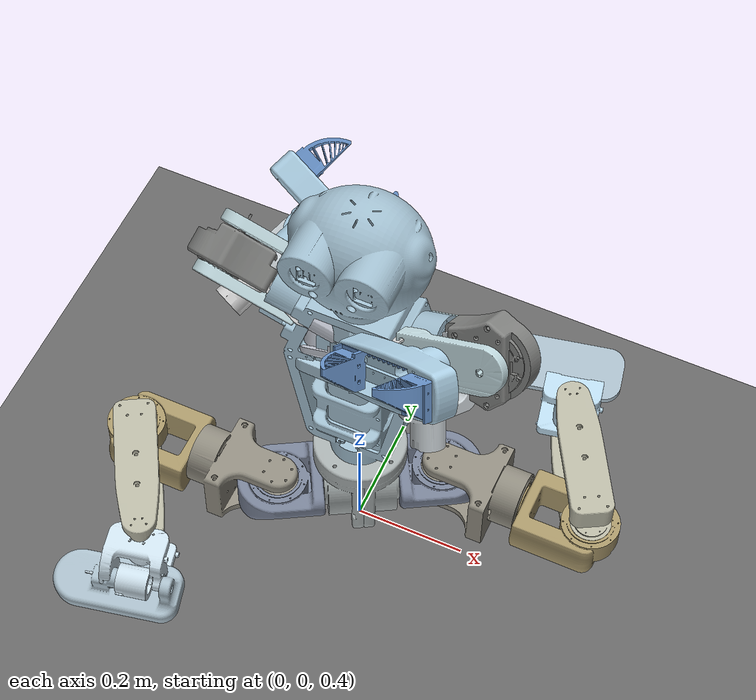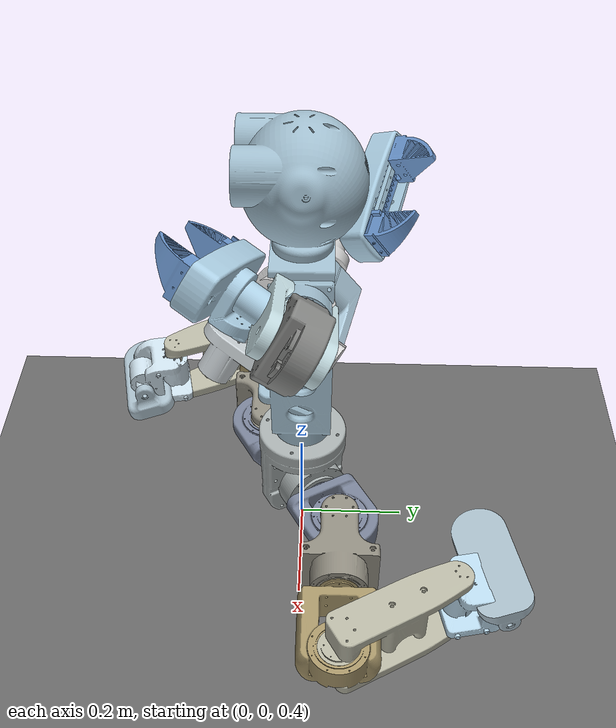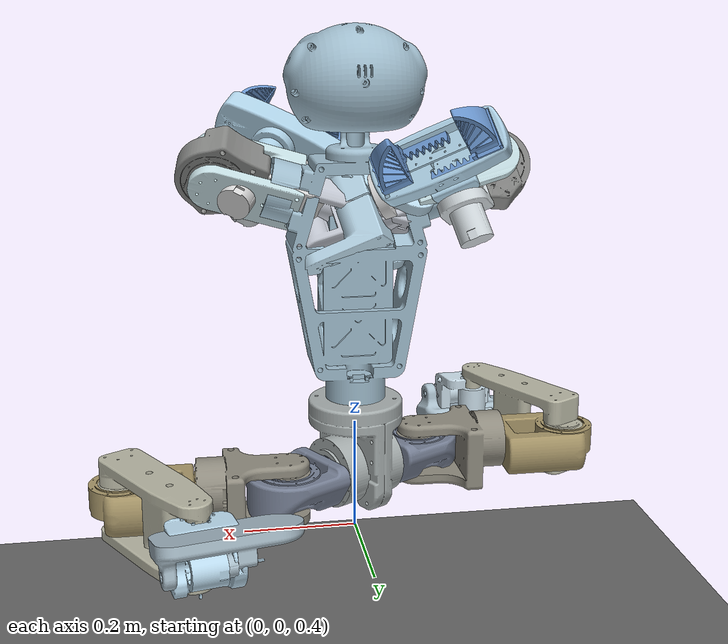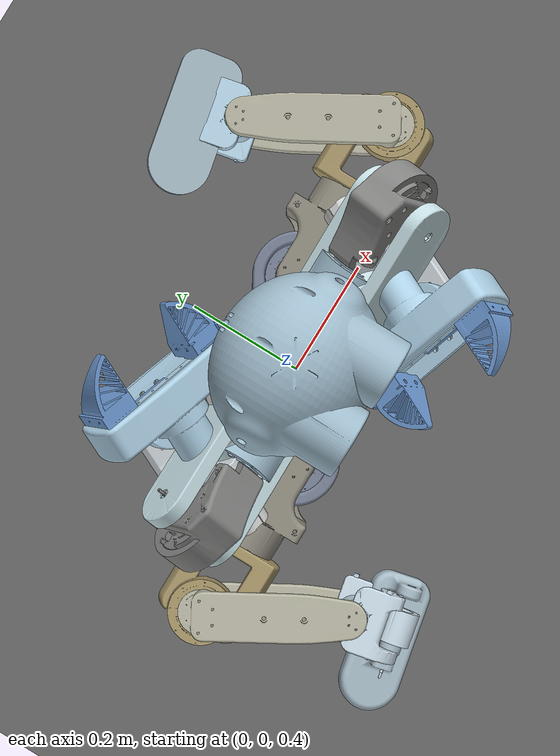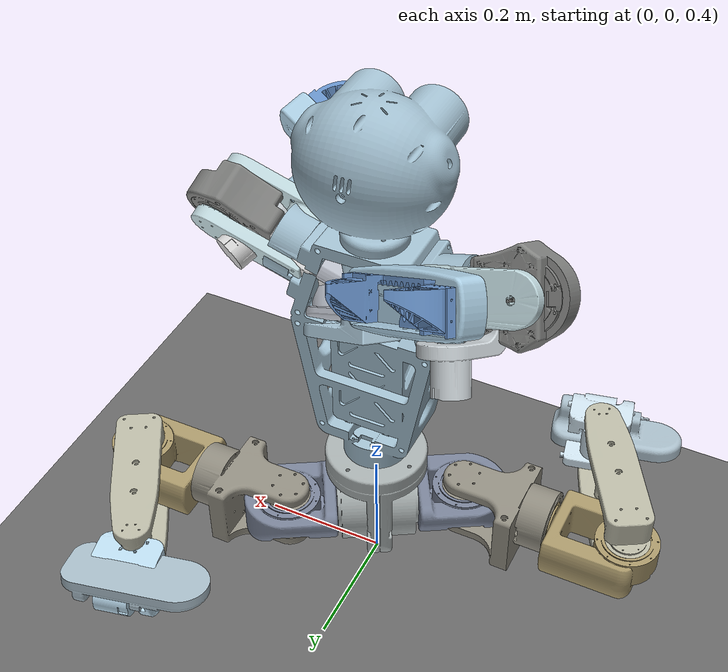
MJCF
<?xml version="1.0" ?>
<mujoco model="robot_7dof_arm">
  <compiler angle="radian" meshdir="meshes" autolimits="true"/>
  <default>
    <joint limited="true" damping="0.1" armature="0.01" frictionloss="0.0"/>
    <geom condim="3" contype="1" conaffinity="0" friction="0.9 0.2 0.2" solref="0.001 2"/>
    <motor ctrllimited="true"/>
    <equality solref="0.001 2"/>
    <default class="visualgeom">
      <geom type="mesh" condim="3" contype="0" conaffinity="0"/>
    </default>
    <default class="collision">
			<geom type="capsule" mass="0" density="0" condim="3" contype="1" conaffinity="1" group="3" />
		</default>
  </default>
  <option iterations="50" timestep="0.001" viscosity="1e-06" solver="PGS" gravity="0 0 -9.81">
    <flag frictionloss="enable"/>
  </option>
  <asset>
    <mesh name="fused_component_upper_limb_assembly_7_dof_1_torso_1_top_skeleton_2_simple" file="fused_component_upper_limb_assembly_7_dof_1_torso_1_top_skeleton_2_simple.stl"/>
    <mesh name="fused_component_upper_limb_assembly_7_dof_1_full_arm_7_dof_1_lower_arm_3_dof_1_hand_1_slide_2_simple" file="fused_component_upper_limb_assembly_7_dof_1_full_arm_7_dof_1_lower_arm_3_dof_1_hand_1_slide_2_simple.stl"/>
    <mesh name="fused_component_upper_limb_assembly_7_dof_1_full_arm_7_dof_1_lower_arm_3_dof_1_hand_1_slide_1_simple" file="fused_component_upper_limb_assembly_7_dof_1_full_arm_7_dof_1_lower_arm_3_dof_1_hand_1_slide_1_simple.stl"/>
    <mesh name="fused_component_upper_limb_assembly_7_dof_1_full_arm_7_dof_2_lower_arm_3_dof_1_hand_1_slide_2_simple" file="fused_component_upper_limb_assembly_7_dof_1_full_arm_7_dof_2_lower_arm_3_dof_1_hand_1_slide_2_simple.stl"/>
    <mesh name="fused_component_upper_limb_assembly_7_dof_1_full_arm_7_dof_2_lower_arm_3_dof_1_hand_1_slide_1_simple" file="fused_component_upper_limb_assembly_7_dof_1_full_arm_7_dof_2_lower_arm_3_dof_1_hand_1_slide_1_simple.stl"/>
    <mesh name="fused_component_upper_limb_assembly_7_dof_1_full_arm_7_dof_1_lower_arm_3_dof_1_rmd_x4_24_mock_3_inner_rmd_x4_24_1_simple" file="fused_component_upper_limb_assembly_7_dof_1_full_arm_7_dof_1_lower_arm_3_dof_1_rmd_x4_24_mock_3_inner_rmd_x4_24_1_simple.stl"/>
    <mesh name="fused_component_upper_limb_assembly_7_dof_1_full_arm_7_dof_2_lower_arm_3_dof_1_rmd_x4_24_mock_3_inner_rmd_x4_24_1_simple" file="fused_component_upper_limb_assembly_7_dof_1_full_arm_7_dof_2_lower_arm_3_dof_1_rmd_x4_24_mock_3_inner_rmd_x4_24_1_simple.stl"/>
    <mesh name="fused_component_lower_limbs_1_left_foot_1_rmd_x4_24_mock_1_inner_rmd_x4_24_1_simple" file="fused_component_lower_limbs_1_left_foot_1_rmd_x4_24_mock_1_inner_rmd_x4_24_1_simple.stl"/>
    <mesh name="fused_component_lower_limbs_1_right_foot_1_rmd_x4_24_mock_1_inner_rmd_x4_24_1_simple" file="fused_component_lower_limbs_1_right_foot_1_rmd_x4_24_mock_1_inner_rmd_x4_24_1_simple.stl"/>
    <mesh name="fused_component_upper_limb_assembly_7_dof_1_full_arm_7_dof_1_lower_arm_3_dof_1_rmd_x4_24_mock_2_inner_rmd_x4_24_1_simple" file="fused_component_upper_limb_assembly_7_dof_1_full_arm_7_dof_1_lower_arm_3_dof_1_rmd_x4_24_mock_2_inner_rmd_x4_24_1_simple.stl"/>
    <mesh name="fused_component_upper_limb_assembly_7_dof_1_full_arm_7_dof_2_lower_arm_3_dof_1_rmd_x4_24_mock_2_inner_rmd_x4_24_1_simple" file="fused_component_upper_limb_assembly_7_dof_1_full_arm_7_dof_2_lower_arm_3_dof_1_rmd_x4_24_mock_2_inner_rmd_x4_24_1_simple.stl"/>
    <mesh name="fused_component_lower_limbs_1_leg_assembly_1_rmd_x4_24_mock_1_outer_rmd_x4_24_1_simple" file="fused_component_lower_limbs_1_leg_assembly_1_rmd_x4_24_mock_1_outer_rmd_x4_24_1_simple.stl"/>
    <mesh name="fused_component_lower_limbs_1_leg_assembly_2_rmd_x4_24_mock_1_outer_rmd_x4_24_1_simple" file="fused_component_lower_limbs_1_leg_assembly_2_rmd_x4_24_mock_1_outer_rmd_x4_24_1_simple.stl"/>
    <mesh name="fused_component_upper_limb_assembly_7_dof_1_full_arm_7_dof_1_lower_arm_3_dof_1_rmd_x4_24_mock_1_outer_rmd_x4_24_1_simple" file="fused_component_upper_limb_assembly_7_dof_1_full_arm_7_dof_1_lower_arm_3_dof_1_rmd_x4_24_mock_1_outer_rmd_x4_24_1_simple.stl"/>
    <mesh name="fused_component_upper_limb_assembly_7_dof_1_full_arm_7_dof_2_lower_arm_3_dof_1_rmd_x4_24_mock_1_outer_rmd_x4_24_1_simple" file="fused_component_upper_limb_assembly_7_dof_1_full_arm_7_dof_2_lower_arm_3_dof_1_rmd_x4_24_mock_1_outer_rmd_x4_24_1_simple.stl"/>
    <mesh name="fused_component_lower_limbs_1_leg_assembly_1_rmd_x8_90_mock_3_inner_rmd_x8_90_1_simple" file="fused_component_lower_limbs_1_leg_assembly_1_rmd_x8_90_mock_3_inner_rmd_x8_90_1_simple.stl"/>
    <mesh name="fused_component_lower_limbs_1_leg_assembly_2_rmd_x8_90_mock_3_inner_rmd_x8_90_1_simple" file="fused_component_lower_limbs_1_leg_assembly_2_rmd_x8_90_mock_3_inner_rmd_x8_90_1_simple.stl"/>
    <mesh name="fused_component_upper_limb_assembly_7_dof_1_full_arm_7_dof_1_upper_left_arm_1_rmd_x4_24_mock_2_inner_rmd_x4_24_1_simple" file="fused_component_upper_limb_assembly_7_dof_1_full_arm_7_dof_1_upper_left_arm_1_rmd_x4_24_mock_2_inner_rmd_x4_24_1_simple.stl"/>
    <mesh name="fused_component_upper_limb_assembly_7_dof_1_full_arm_7_dof_2_upper_left_arm_1_rmd_x4_24_mock_2_inner_rmd_x4_24_1_simple" file="fused_component_upper_limb_assembly_7_dof_1_full_arm_7_dof_2_upper_left_arm_1_rmd_x4_24_mock_2_inner_rmd_x4_24_1_simple.stl"/>
    <mesh name="fused_component_lower_limbs_1_leg_assembly_1_rmd_x8_90_mock_2_inner_rmd_x8_90_1_simple" file="fused_component_lower_limbs_1_leg_assembly_1_rmd_x8_90_mock_2_inner_rmd_x8_90_1_simple.stl"/>
    <mesh name="fused_component_lower_limbs_1_leg_assembly_2_rmd_x8_90_mock_2_inner_rmd_x8_90_1_simple" file="fused_component_lower_limbs_1_leg_assembly_2_rmd_x8_90_mock_2_inner_rmd_x8_90_1_simple.stl"/>
    <mesh name="fused_component_lower_limbs_1_leg_assembly_1_rmd_x8_90_mock_1_inner_rmd_x8_90_1_simple" file="fused_component_lower_limbs_1_leg_assembly_1_rmd_x8_90_mock_1_inner_rmd_x8_90_1_simple.stl"/>
    <mesh name="fused_component_upper_limb_assembly_7_dof_1_full_arm_7_dof_1_upper_left_arm_1_rmd_x4_24_mock_1_outer_rmd_x4_24_1_simple" file="fused_component_upper_limb_assembly_7_dof_1_full_arm_7_dof_1_upper_left_arm_1_rmd_x4_24_mock_1_outer_rmd_x4_24_1_simple.stl"/>
    <mesh name="fused_component_upper_limb_assembly_7_dof_1_full_arm_7_dof_2_upper_left_arm_1_rmd_x4_24_mock_1_outer_rmd_x4_24_1_simple" file="fused_component_upper_limb_assembly_7_dof_1_full_arm_7_dof_2_upper_left_arm_1_rmd_x4_24_mock_1_outer_rmd_x4_24_1_simple.stl"/>
    <mesh name="fused_component_lower_limbs_1_leg_assembly_2_rmd_x8_90_mock_1_inner_rmd_x8_90_1_simple" file="fused_component_lower_limbs_1_leg_assembly_2_rmd_x8_90_mock_1_inner_rmd_x8_90_1_simple.stl"/>
    <mesh name="fused_component_lower_limbs_1_leg_assembly_1_rmd_x12_150_mock_1_inner_x12_150_1_simple" file="fused_component_lower_limbs_1_leg_assembly_1_rmd_x12_150_mock_1_inner_x12_150_1_simple.stl"/>
    <mesh name="fused_component_upper_limb_assembly_7_dof_1_full_arm_7_dof_1_upper_left_arm_1_rmd_x8_90_mock_2_inner_rmd_x8_90_1_simple" file="fused_component_upper_limb_assembly_7_dof_1_full_arm_7_dof_1_upper_left_arm_1_rmd_x8_90_mock_2_inner_rmd_x8_90_1_simple.stl"/>
    <mesh name="fused_component_upper_limb_assembly_7_dof_1_full_arm_7_dof_2_upper_left_arm_1_rmd_x8_90_mock_2_inner_rmd_x8_90_1_simple" file="fused_component_upper_limb_assembly_7_dof_1_full_arm_7_dof_2_upper_left_arm_1_rmd_x8_90_mock_2_inner_rmd_x8_90_1_simple.stl"/>
    <mesh name="fused_component_lower_limbs_1_leg_assembly_2_rmd_x12_150_mock_1_inner_x12_150_1_simple" file="fused_component_lower_limbs_1_leg_assembly_2_rmd_x12_150_mock_1_inner_x12_150_1_simple.stl"/>
    <mesh name="fused_component_upper_limb_assembly_7_dof_1_torso_1_rmd_x8_90_mock_1_inner_rmd_x8_90_1_simple" file="fused_component_upper_limb_assembly_7_dof_1_torso_1_rmd_x8_90_mock_1_inner_rmd_x8_90_1_simple.stl"/>
    <mesh name="fused_component_upper_limb_assembly_7_dof_1_full_arm_7_dof_1_upper_left_arm_1_rmd_x8_90_mock_1_inner_rmd_x8_90_1_simple" file="fused_component_upper_limb_assembly_7_dof_1_full_arm_7_dof_1_upper_left_arm_1_rmd_x8_90_mock_1_inner_rmd_x8_90_1_simple.stl"/>
    <mesh name="fused_component_upper_limb_assembly_7_dof_1_full_arm_7_dof_2_upper_left_arm_1_rmd_x8_90_mock_1_inner_rmd_x8_90_1_simple" file="fused_component_upper_limb_assembly_7_dof_1_full_arm_7_dof_2_upper_left_arm_1_rmd_x8_90_mock_1_inner_rmd_x8_90_1_simple.stl"/>
    <texture name="texplane" type="2d" builtin="checker" rgb1=".0 .0 .0" rgb2=".8 .8 .8" width="100" height="108"/>
    <material name="matplane" reflectance="0." texture="texplane" texrepeat="1 1" texuniform="true"/>
    <material name="visualgeom" rgba="0.5 0.9 0.2 1"/>
  </asset>
  <worldbody>
    <geom name="ground" type="plane" pos="0.001 0 0" quat="1 0 0 0" material="matplane" condim="3" contype="0" conaffinity="1" size="0 0 1"/>
    <light directional="true" diffuse="0.6 0.6 0.6" specular="0.2 0.2 0.2" pos="0 0 4" dir="0 0 -1"/>
    <light directional="true" diffuse="0.4 0.4 0.4" specular="0.1 0.1 0.1" pos="0 0 5.0" dir="0 0 -1" castshadow="false"/>
    <body name="root" pos="0 0 1.0" quat="1 0 0 0">
      <joint name="root_x" type="slide" axis="1 0 0" limited="false"/>
      <joint name="root_y" type="slide" axis="0 1 0" limited="false"/>
      <joint name="root_z" type="slide" axis="0 0 1" limited="false"/>
      <joint name="root_ball" type="ball" limited="false"/>
      <site name="imu" size="0.01" pos="0 0 0"/>
      <geom type="mesh" rgba="0.628022 0.741104 0.805209 1" mesh="fused_component_upper_limb_assembly_7_dof_1_torso_1_top_skeleton_2_simple" class="visualgeom"/>
      <geom type="mesh" rgba="0.628022 0.741104 0.805209 1" mesh="fused_component_upper_limb_assembly_7_dof_1_torso_1_top_skeleton_2_simple" contype="0" conaffinity="0" group="1" density="0"/>
      <body name="fused_component_upper_limb_assembly_7_dof_1_full_arm_7_dof_2_upper_left_arm_1_rmd_x8_90_mock_1_inner_rmd_x8_90_1" pos="0.151411 0.000437102 0.0219782" quat="0.566935 -0.422593 0.422593 -0.566935">
        <joint name="left shoulder pitch" pos="0 0 0" axis="0 0 -1" range="-3.14159 3.14159" actuatorfrcrange="-80 80" ref="-0.534"/>
        <geom type="mesh" rgba="0.510294 0.514216 0.506863 1" mesh="fused_component_upper_limb_assembly_7_dof_1_full_arm_7_dof_2_upper_left_arm_1_rmd_x8_90_mock_1_inner_rmd_x8_90_1_simple" class="visualgeom"/>
        <geom type="mesh" rgba="0.510294 0.514216 0.506863 1" mesh="fused_component_upper_limb_assembly_7_dof_1_full_arm_7_dof_2_upper_left_arm_1_rmd_x8_90_mock_1_inner_rmd_x8_90_1_simple" contype="0" conaffinity="0" group="1" density="0"/>
        <body name="fused_component_upper_limb_assembly_7_dof_1_full_arm_7_dof_2_upper_left_arm_1_rmd_x8_90_mock_2_inner_rmd_x8_90_1" pos="-0.0197021 0.011375 0.087" quat="0.683013 -0.183013 -0.683013 -0.183013">
          <joint name="left shoulder yaw" pos="0 0 0" axis="0 0 -1" range="0.977384 5.3058" actuatorfrcrange="-80 80" ref="2.54"/>
          <geom type="mesh" rgba="0.772059 0.868137 0.88848 1" mesh="fused_component_upper_limb_assembly_7_dof_1_full_arm_7_dof_2_upper_left_arm_1_rmd_x8_90_mock_2_inner_rmd_x8_90_1_simple" class="visualgeom"/>
          <geom type="mesh" rgba="0.772059 0.868137 0.88848 1" mesh="fused_component_upper_limb_assembly_7_dof_1_full_arm_7_dof_2_upper_left_arm_1_rmd_x8_90_mock_2_inner_rmd_x8_90_1_simple" contype="0" conaffinity="0" group="1" density="0"/>
          <body name="fused_component_upper_limb_assembly_7_dof_1_full_arm_7_dof_2_upper_left_arm_1_rmd_x4_24_mock_1_outer_rmd_x4_24_1" pos="-0.1898 -1.96539e-09 -0.02275" quat="0.707107 1.64085e-08 -0.707107 1.64085e-08">
            <joint name="left shoulder roll" pos="0 0 0" axis="0 0 -1" range="-3.14159 3.14159" actuatorfrcrange="-80 80" ref="-0.0314"/>
            <geom type="mesh" rgba="0.764216 0.782843 0.823529 1" mesh="fused_component_upper_limb_assembly_7_dof_1_full_arm_7_dof_2_upper_left_arm_1_rmd_x4_24_mock_1_outer_rmd_x4_24_1_simple" class="visualgeom"/>
            <geom type="mesh" rgba="0.764216 0.782843 0.823529 1" mesh="fused_component_upper_limb_assembly_7_dof_1_full_arm_7_dof_2_upper_left_arm_1_rmd_x4_24_mock_1_outer_rmd_x4_24_1_simple" contype="0" conaffinity="0" group="1" density="0"/>
            <body name="fused_component_upper_limb_assembly_7_dof_1_full_arm_7_dof_2_upper_left_arm_1_rmd_x4_24_mock_2_inner_rmd_x4_24_1" pos="-2.94744e-10 0.009 0.134" quat="1.89469e-08 -1.89469e-08 -0.707107 0.707107">
              <joint name="left elbow pitch" pos="0 0 0" axis="0 0 -1" range="1.44862 5.44543" actuatorfrcrange="-80 80" ref="2.35"/>
              <geom type="mesh" rgba="0.741912 0.86201 0.930882 1" mesh="fused_component_upper_limb_assembly_7_dof_1_full_arm_7_dof_2_upper_left_arm_1_rmd_x4_24_mock_2_inner_rmd_x4_24_1_simple" class="visualgeom"/>
              <geom type="mesh" rgba="0.741912 0.86201 0.930882 1" mesh="fused_component_upper_limb_assembly_7_dof_1_full_arm_7_dof_2_upper_left_arm_1_rmd_x4_24_mock_2_inner_rmd_x4_24_1_simple" contype="0" conaffinity="0" group="1" density="0"/>
              <body name="fused_component_upper_limb_assembly_7_dof_1_full_arm_7_dof_2_lower_arm_3_dof_1_rmd_x4_24_mock_1_outer_rmd_x4_24_1" pos="0.0499362 0.156003 0.009" quat="0.109092 0.109092 0.698641 0.698641">
                <joint name="left wrist roll" pos="0 0 0" axis="0 0 -1" range="-3.14159 3.14159" actuatorfrcrange="-80 80" ref="1.79"/>
                <geom type="mesh" rgba="0.85 0.85 0.85 1" mesh="fused_component_upper_limb_assembly_7_dof_1_full_arm_7_dof_2_lower_arm_3_dof_1_rmd_x4_24_mock_1_outer_rmd_x4_24_1_simple" class="visualgeom"/>
                <geom type="mesh" rgba="0.85 0.85 0.85 1" mesh="fused_component_upper_limb_assembly_7_dof_1_full_arm_7_dof_2_lower_arm_3_dof_1_rmd_x4_24_mock_1_outer_rmd_x4_24_1_simple" contype="0" conaffinity="0" group="1" density="0"/>
                <body name="fused_component_upper_limb_assembly_7_dof_1_full_arm_7_dof_2_lower_arm_3_dof_1_rmd_x4_24_mock_2_inner_rmd_x4_24_1" pos="0.1135 -5.61782e-09 0.0895" quat="0.5 0.5 0.5 0.5">
                  <joint name="left wrist pitch" pos="0 0 0" axis="0 0 -1" range="-3.14159 3.14159" actuatorfrcrange="-80 80" ref="1.35"/>
                  <geom type="mesh" rgba="0.812745 0.842157 0.858824 1" mesh="fused_component_upper_limb_assembly_7_dof_1_full_arm_7_dof_2_lower_arm_3_dof_1_rmd_x4_24_mock_2_inner_rmd_x4_24_1_simple" class="visualgeom"/>
                  <geom type="mesh" rgba="0.812745 0.842157 0.858824 1" mesh="fused_component_upper_limb_assembly_7_dof_1_full_arm_7_dof_2_lower_arm_3_dof_1_rmd_x4_24_mock_2_inner_rmd_x4_24_1_simple" contype="0" conaffinity="0" group="1" density="0"/>
                  <body name="fused_component_upper_limb_assembly_7_dof_1_full_arm_7_dof_2_lower_arm_3_dof_1_rmd_x4_24_mock_3_inner_rmd_x4_24_1" pos="-0.0985 2.6393e-09 -0.1135" quat="9.47343e-09 -0.707107 9.47343e-09 0.707107">
                    <joint name="left wrist yaw" pos="0 0 0" axis="0 0 -1" range="-3.14159 3.14159" actuatorfrcrange="-80 80" ref="1.07"/>
                    <geom type="mesh" rgba="0.681495 0.81875 0.9 1" mesh="fused_component_upper_limb_assembly_7_dof_1_full_arm_7_dof_2_lower_arm_3_dof_1_rmd_x4_24_mock_3_inner_rmd_x4_24_1_simple" class="visualgeom"/>
                    <geom type="mesh" rgba="0.681495 0.81875 0.9 1" mesh="fused_component_upper_limb_assembly_7_dof_1_full_arm_7_dof_2_lower_arm_3_dof_1_rmd_x4_24_mock_3_inner_rmd_x4_24_1_simple" contype="0" conaffinity="0" group="1" density="0"/>
                    <body name="fused_component_upper_limb_assembly_7_dof_1_full_arm_7_dof_2_lower_arm_3_dof_1_hand_1_slide_1" pos="0.0805 -0.1 -0.0985" quat="4.92255e-08 -4.92255e-08 -0.707107 0.707107">
                      <joint name="left hand right finger" pos="0 0 0" axis="0 0 -1" type="slide" range="0 0.051" actuatorfrcrange="-80 80" ref="0.0"/>
                      <geom type="mesh" rgba="0.423529 0.596078 0.817647 1" mesh="fused_component_upper_limb_assembly_7_dof_1_full_arm_7_dof_2_lower_arm_3_dof_1_hand_1_slide_1_simple" class="visualgeom"/>
                      <geom type="mesh" rgba="0.423529 0.596078 0.817647 1" mesh="fused_component_upper_limb_assembly_7_dof_1_full_arm_7_dof_2_lower_arm_3_dof_1_hand_1_slide_1_simple" contype="0" conaffinity="0" group="1" density="0"/>
                    </body>
                    <body name="fused_component_upper_limb_assembly_7_dof_1_full_arm_7_dof_2_lower_arm_3_dof_1_hand_1_slide_2" pos="0.0805 0.1 -0.0985" quat="4.92255e-08 4.92255e-08 0.707107 0.707107">
                      <joint name="left hand left finger" pos="0 0 0" axis="0 0 -1" type="slide" range="-0.051 0" actuatorfrcrange="-80 80" ref="0.0"/>
                      <geom type="mesh" rgba="0.423529 0.596078 0.817647 1" mesh="fused_component_upper_limb_assembly_7_dof_1_full_arm_7_dof_2_lower_arm_3_dof_1_hand_1_slide_2_simple" class="visualgeom"/>
                      <geom type="mesh" rgba="0.423529 0.596078 0.817647 1" mesh="fused_component_upper_limb_assembly_7_dof_1_full_arm_7_dof_2_lower_arm_3_dof_1_hand_1_slide_2_simple" contype="0" conaffinity="0" group="1" density="0"/>
                    </body>
                  </body>
                </body>
              </body>
            </body>
          </body>
        </body>
      </body>
      <body name="fused_component_upper_limb_assembly_7_dof_1_full_arm_7_dof_1_upper_left_arm_1_rmd_x8_90_mock_1_inner_rmd_x8_90_1" pos="-0.151411 0.000437101 0.0219782" quat="0.566935 -0.422593 -0.422593 0.566935">
        <joint name="right shoulder pitch" pos="0 0 0" axis="0 0 -1" range="-3.14159 3.14159" actuatorfrcrange="-80 80" ref="2.45"/>
        <geom type="mesh" rgba="0.510294 0.514216 0.506863 1" mesh="fused_component_upper_limb_assembly_7_dof_1_full_arm_7_dof_1_upper_left_arm_1_rmd_x8_90_mock_1_inner_rmd_x8_90_1_simple" class="visualgeom"/>
        <geom type="mesh" rgba="0.510294 0.514216 0.506863 1" mesh="fused_component_upper_limb_assembly_7_dof_1_full_arm_7_dof_1_upper_left_arm_1_rmd_x8_90_mock_1_inner_rmd_x8_90_1_simple" contype="0" conaffinity="0" group="1" density="0"/>
        <body name="fused_component_upper_limb_assembly_7_dof_1_full_arm_7_dof_1_upper_left_arm_1_rmd_x8_90_mock_2_inner_rmd_x8_90_1" pos="-0.0197021 0.011375 0.087" quat="0.683013 -0.183013 -0.683013 -0.183013">
          <joint name="right shoulder yaw" pos="0 0 0" axis="0 0 -1" range="0.977384 5.3058" actuatorfrcrange="-80 80" ref="3.77"/>
          <geom type="mesh" rgba="0.772059 0.868137 0.88848 1" mesh="fused_component_upper_limb_assembly_7_dof_1_full_arm_7_dof_1_upper_left_arm_1_rmd_x8_90_mock_2_inner_rmd_x8_90_1_simple" class="visualgeom"/>
          <geom type="mesh" rgba="0.772059 0.868137 0.88848 1" mesh="fused_component_upper_limb_assembly_7_dof_1_full_arm_7_dof_1_upper_left_arm_1_rmd_x8_90_mock_2_inner_rmd_x8_90_1_simple" contype="0" conaffinity="0" group="1" density="0"/>
          <body name="fused_component_upper_limb_assembly_7_dof_1_full_arm_7_dof_1_upper_left_arm_1_rmd_x4_24_mock_1_outer_rmd_x4_24_1" pos="-0.1898 -1.96539e-09 -0.02275" quat="0.707107 1.64085e-08 -0.707107 1.64085e-08">
            <joint name="right shoulder roll" pos="0 0 0" axis="0 0 -1" range="-3.14159 3.14159" actuatorfrcrange="-80 80" ref="-0.0314"/>
            <geom type="mesh" rgba="0.764216 0.782843 0.823529 1" mesh="fused_component_upper_limb_assembly_7_dof_1_full_arm_7_dof_1_upper_left_arm_1_rmd_x4_24_mock_1_outer_rmd_x4_24_1_simple" class="visualgeom"/>
            <geom type="mesh" rgba="0.764216 0.782843 0.823529 1" mesh="fused_component_upper_limb_assembly_7_dof_1_full_arm_7_dof_1_upper_left_arm_1_rmd_x4_24_mock_1_outer_rmd_x4_24_1_simple" contype="0" conaffinity="0" group="1" density="0"/>
            <body name="fused_component_upper_limb_assembly_7_dof_1_full_arm_7_dof_1_upper_left_arm_1_rmd_x4_24_mock_2_inner_rmd_x4_24_1" pos="-2.94744e-10 0.009 0.134" quat="1.89469e-08 -1.89469e-08 -0.707107 0.707107">
              <joint name="right elbow pitch" pos="0 0 0" axis="0 0 -1" range="1.44862 5.44543" actuatorfrcrange="-80 80" ref="2.65"/>
              <geom type="mesh" rgba="0.741912 0.86201 0.930882 1" mesh="fused_component_upper_limb_assembly_7_dof_1_full_arm_7_dof_1_upper_left_arm_1_rmd_x4_24_mock_2_inner_rmd_x4_24_1_simple" class="visualgeom"/>
              <geom type="mesh" rgba="0.741912 0.86201 0.930882 1" mesh="fused_component_upper_limb_assembly_7_dof_1_full_arm_7_dof_1_upper_left_arm_1_rmd_x4_24_mock_2_inner_rmd_x4_24_1_simple" contype="0" conaffinity="0" group="1" density="0"/>
              <body name="fused_component_upper_limb_assembly_7_dof_1_full_arm_7_dof_1_lower_arm_3_dof_1_rmd_x4_24_mock_1_outer_rmd_x4_24_1" pos="0.0499362 0.156003 0.009" quat="0.109092 0.109092 0.698641 0.698641">
                <joint name="right wrist roll" pos="0 0 0" axis="0 0 -1" range="-3.14159 3.14159" actuatorfrcrange="-80 80" ref="-2.13"/>
                <geom type="mesh" rgba="0.85 0.85 0.85 1" mesh="fused_component_upper_limb_assembly_7_dof_1_full_arm_7_dof_1_lower_arm_3_dof_1_rmd_x4_24_mock_1_outer_rmd_x4_24_1_simple" class="visualgeom"/>
                <geom type="mesh" rgba="0.85 0.85 0.85 1" mesh="fused_component_upper_limb_assembly_7_dof_1_full_arm_7_dof_1_lower_arm_3_dof_1_rmd_x4_24_mock_1_outer_rmd_x4_24_1_simple" contype="0" conaffinity="0" group="1" density="0"/>
                <body name="fused_component_upper_limb_assembly_7_dof_1_full_arm_7_dof_1_lower_arm_3_dof_1_rmd_x4_24_mock_2_inner_rmd_x4_24_1" pos="0.1135 -5.61782e-09 0.0895" quat="0.5 0.5 0.5 0.5">
                  <joint name="right wrist pitch" pos="0 0 0" axis="0 0 -1" range="-3.14159 3.14159" actuatorfrcrange="-80 80" ref="1.79"/>
                  <geom type="mesh" rgba="0.812745 0.842157 0.858824 1" mesh="fused_component_upper_limb_assembly_7_dof_1_full_arm_7_dof_1_lower_arm_3_dof_1_rmd_x4_24_mock_2_inner_rmd_x4_24_1_simple" class="visualgeom"/>
                  <geom type="mesh" rgba="0.812745 0.842157 0.858824 1" mesh="fused_component_upper_limb_assembly_7_dof_1_full_arm_7_dof_1_lower_arm_3_dof_1_rmd_x4_24_mock_2_inner_rmd_x4_24_1_simple" contype="0" conaffinity="0" group="1" density="0"/>
                  <body name="fused_component_upper_limb_assembly_7_dof_1_full_arm_7_dof_1_lower_arm_3_dof_1_rmd_x4_24_mock_3_inner_rmd_x4_24_1" pos="-0.0985 2.6393e-09 -0.1135" quat="9.47343e-09 -0.707107 9.47343e-09 0.707107">
                    <joint name="right wrist yaw" pos="0 0 0" axis="0 0 -1" range="-3.14159 3.14159" actuatorfrcrange="-80 80" ref="-0.251"/>
                    <geom type="mesh" rgba="0.681495 0.81875 0.9 1" mesh="fused_component_upper_limb_assembly_7_dof_1_full_arm_7_dof_1_lower_arm_3_dof_1_rmd_x4_24_mock_3_inner_rmd_x4_24_1_simple" class="visualgeom"/>
                    <geom type="mesh" rgba="0.681495 0.81875 0.9 1" mesh="fused_component_upper_limb_assembly_7_dof_1_full_arm_7_dof_1_lower_arm_3_dof_1_rmd_x4_24_mock_3_inner_rmd_x4_24_1_simple" contype="0" conaffinity="0" group="1" density="0"/>
                    <body name="fused_component_upper_limb_assembly_7_dof_1_full_arm_7_dof_1_lower_arm_3_dof_1_hand_1_slide_1" pos="0.0805 -0.1 -0.0985" quat="4.92255e-08 -4.92255e-08 -0.707107 0.707107">
                      <joint name="right hand right finger" pos="0 0 0" axis="0 0 -1" type="slide" range="0 0.051" actuatorfrcrange="-80 80" ref="0.0"/>
                      <geom type="mesh" rgba="0.423529 0.596078 0.817647 1" mesh="fused_component_upper_limb_assembly_7_dof_1_full_arm_7_dof_1_lower_arm_3_dof_1_hand_1_slide_1_simple" class="visualgeom"/>
                      <geom type="mesh" rgba="0.423529 0.596078 0.817647 1" mesh="fused_component_upper_limb_assembly_7_dof_1_full_arm_7_dof_1_lower_arm_3_dof_1_hand_1_slide_1_simple" contype="0" conaffinity="0" group="1" density="0"/>
                    </body>
                    <body name="fused_component_upper_limb_assembly_7_dof_1_full_arm_7_dof_1_lower_arm_3_dof_1_hand_1_slide_2" pos="0.0805 0.1 -0.0985" quat="4.92255e-08 4.92255e-08 0.707107 0.707107">
                      <joint name="right hand left finger" pos="0 0 0" axis="0 0 -1" type="slide" range="-0.051 0" actuatorfrcrange="-80 80" ref="0.0"/>
                      <geom type="mesh" rgba="0.423529 0.596078 0.817647 1" mesh="fused_component_upper_limb_assembly_7_dof_1_full_arm_7_dof_1_lower_arm_3_dof_1_hand_1_slide_2_simple" class="visualgeom"/>
                      <geom type="mesh" rgba="0.423529 0.596078 0.817647 1" mesh="fused_component_upper_limb_assembly_7_dof_1_full_arm_7_dof_1_lower_arm_3_dof_1_hand_1_slide_2_simple" contype="0" conaffinity="0" group="1" density="0"/>
                    </body>
                  </body>
                </body>
              </body>
            </body>
          </body>
        </body>
      </body>
      <body name="fused_component_upper_limb_assembly_7_dof_1_torso_1_rmd_x8_90_mock_1_inner_rmd_x8_90_1" pos="-2.34973e-08 0.000437101 -0.351562" quat="1.64085e-08 -0.707107 0.707107 -1.64085e-08">
        <joint name="torso roll" pos="0 0 0" axis="0 0 -1" range="-3.14159 3.14159" actuatorfrcrange="-80 80" ref="2.58"/>
        <geom type="mesh" rgba="0.651593 0.680025 0.679902 1" mesh="fused_component_upper_limb_assembly_7_dof_1_torso_1_rmd_x8_90_mock_1_inner_rmd_x8_90_1_simple" class="visualgeom"/>
        <geom type="mesh" rgba="0.651593 0.680025 0.679902 1" mesh="fused_component_upper_limb_assembly_7_dof_1_torso_1_rmd_x8_90_mock_1_inner_rmd_x8_90_1_simple" contype="0" conaffinity="0" group="1" density="0"/>
        <body name="fused_component_lower_limbs_1_leg_assembly_2_rmd_x12_150_mock_1_inner_x12_150_1" pos="0.02225 0.0385381 0.131" quat="0.612372 0.353553 -0.612372 0.353553">
          <joint name="left hip pitch" pos="0 0 0" axis="0 0 -1" range="-4.71239 4.71239" actuatorfrcrange="-80 80" ref="-1.6"/>
          <geom type="mesh" rgba="0.468627 0.505882 0.587255 1" mesh="fused_component_lower_limbs_1_leg_assembly_2_rmd_x12_150_mock_1_inner_x12_150_1_simple" class="visualgeom"/>
          <geom type="mesh" rgba="0.468627 0.505882 0.587255 1" mesh="fused_component_lower_limbs_1_leg_assembly_2_rmd_x12_150_mock_1_inner_x12_150_1_simple" contype="0" conaffinity="0" group="1" density="0"/>
          <body name="fused_component_lower_limbs_1_leg_assembly_2_rmd_x8_90_mock_1_inner_rmd_x8_90_1" pos="-0.0244382 -0.000630373 -0.1015" quat="0.5 0.5 -0.5 -0.5">
            <joint name="left hip yaw" pos="0 0 0" axis="0 0 -1" range="-3.14159 3.14159" actuatorfrcrange="-80 80" ref="-2.12"/>
            <geom type="mesh" rgba="0.562255 0.547549 0.49951 1" mesh="fused_component_lower_limbs_1_leg_assembly_2_rmd_x8_90_mock_1_inner_rmd_x8_90_1_simple" class="visualgeom"/>
            <geom type="mesh" rgba="0.562255 0.547549 0.49951 1" mesh="fused_component_lower_limbs_1_leg_assembly_2_rmd_x8_90_mock_1_inner_rmd_x8_90_1_simple" contype="0" conaffinity="0" group="1" density="0"/>
            <body name="fused_component_lower_limbs_1_leg_assembly_2_rmd_x8_90_mock_2_inner_rmd_x8_90_1" pos="-0.07875 -0.136399 -0.01965" quat="0.683013 0.683013 -0.183013 -0.183013">
              <joint name="left hip roll" pos="0 0 0" axis="0 0 -1" range="-3.14159 3.14159" actuatorfrcrange="-80 80" ref="1.41"/>
              <geom type="mesh" rgba="0.655882 0.589216 0.411765 1" mesh="fused_component_lower_limbs_1_leg_assembly_2_rmd_x8_90_mock_2_inner_rmd_x8_90_1_simple" class="visualgeom"/>
              <geom type="mesh" rgba="0.655882 0.589216 0.411765 1" mesh="fused_component_lower_limbs_1_leg_assembly_2_rmd_x8_90_mock_2_inner_rmd_x8_90_1_simple" contype="0" conaffinity="0" group="1" density="0"/>
              <body name="fused_component_lower_limbs_1_leg_assembly_2_rmd_x8_90_mock_3_inner_rmd_x8_90_1" pos="6.61991e-09 0.02065 0.127" quat="0.5 -0.5 0.5 0.5">
                <joint name="left knee pitch" pos="0 0 0" axis="0 0 -1" range="-3.14159 3.14159" actuatorfrcrange="-80 80" ref="2.01"/>
                <geom type="mesh" rgba="0.719118 0.715196 0.643137 1" mesh="fused_component_lower_limbs_1_leg_assembly_2_rmd_x8_90_mock_3_inner_rmd_x8_90_1_simple" class="visualgeom"/>
                <geom type="mesh" rgba="0.719118 0.715196 0.643137 1" mesh="fused_component_lower_limbs_1_leg_assembly_2_rmd_x8_90_mock_3_inner_rmd_x8_90_1_simple" contype="0" conaffinity="0" group="1" density="0"/>
                <body name="fused_component_lower_limbs_1_leg_assembly_2_rmd_x4_24_mock_1_outer_rmd_x4_24_1" pos="0.123 -0.213042 -0.0129" quat="2.60501e-08 -0.104528 0.994522 -3.67176e-08">
                  <joint name="left ankle pitch" pos="0 0 0" axis="0 0 -1" range="-3.14159 3.14159" actuatorfrcrange="-80 80" ref="0.238"/>
                  <geom type="mesh" rgba="0.804412 0.877941 0.922059 1" mesh="fused_component_lower_limbs_1_leg_assembly_2_rmd_x4_24_mock_1_outer_rmd_x4_24_1_simple" class="visualgeom"/>
                  <geom type="mesh" rgba="0.804412 0.877941 0.922059 1" mesh="fused_component_lower_limbs_1_leg_assembly_2_rmd_x4_24_mock_1_outer_rmd_x4_24_1_simple" contype="0" conaffinity="0" group="1" density="0"/>
                  <body name="fused_component_lower_limbs_1_left_foot_1_rmd_x4_24_mock_1_inner_rmd_x4_24_1" pos="0.0135 -0.07155 0.01055" quat="0.5 -0.5 -0.5 0.5">
                    <joint name="right ankle roll" pos="0 0 0" axis="0 0 -1" range="-3.14159 3.14159" actuatorfrcrange="-80 80" ref="1.92"/>
                    <geom type="mesh" rgba="0.669608 0.748039 0.794118 1" mesh="fused_component_lower_limbs_1_left_foot_1_rmd_x4_24_mock_1_inner_rmd_x4_24_1_simple" class="visualgeom"/>
                    <!-- Add collision geometries here -->
                    <geom class="collision" type="capsule" fromto="0 0.005 -.17 -.02 0.005 -.01" size="0.05" rgba="0.647059 0.647059 0.647059 1" />
                    <geom class="collision" type="capsule" fromto="0 0.005 -.17 .02 0.005 -.01" size="0.05" rgba="0.647059 0.647059 0.647059 1" />
                  </body>
                </body>
              </body>
            </body>
          </body>
        </body>
        <body name="fused_component_lower_limbs_1_leg_assembly_1_rmd_x12_150_mock_1_inner_x12_150_1" pos="-0.02225 -0.0385381 0.131" quat="0.353553 -0.612372 -0.353553 -0.612372">
          <joint name="right hip pitch" pos="0 0 0" axis="0 0 -1" range="-4.71239 4.71239" actuatorfrcrange="-80 80" ref="1.76"/>
          <geom type="mesh" rgba="0.468627 0.505882 0.587255 1" mesh="fused_component_lower_limbs_1_leg_assembly_1_rmd_x12_150_mock_1_inner_x12_150_1_simple" class="visualgeom"/>
          <geom type="mesh" rgba="0.468627 0.505882 0.587255 1" mesh="fused_component_lower_limbs_1_leg_assembly_1_rmd_x12_150_mock_1_inner_x12_150_1_simple" contype="0" conaffinity="0" group="1" density="0"/>
          <body name="fused_component_lower_limbs_1_leg_assembly_1_rmd_x8_90_mock_1_inner_rmd_x8_90_1" pos="-0.0244382 -0.000630373 -0.1015" quat="0.5 0.5 -0.5 -0.5">
            <joint name="right hip yaw" pos="0 0 0" axis="0 0 -1" range="-3.14159 3.14159" actuatorfrcrange="-80 80" ref="0.967"/>
            <geom type="mesh" rgba="0.562255 0.547549 0.49951 1" mesh="fused_component_lower_limbs_1_leg_assembly_1_rmd_x8_90_mock_1_inner_rmd_x8_90_1_simple" class="visualgeom"/>
            <geom type="mesh" rgba="0.562255 0.547549 0.49951 1" mesh="fused_component_lower_limbs_1_leg_assembly_1_rmd_x8_90_mock_1_inner_rmd_x8_90_1_simple" contype="0" conaffinity="0" group="1" density="0"/>
            <body name="fused_component_lower_limbs_1_leg_assembly_1_rmd_x8_90_mock_2_inner_rmd_x8_90_1" pos="-0.07875 -0.136399 -0.01965" quat="0.683013 0.683013 -0.183013 -0.183013">
              <joint name="right hip roll" pos="0 0 0" axis="0 0 -1" range="-3.14159 3.14159" actuatorfrcrange="-80 80" ref="-1.54"/>
              <geom type="mesh" rgba="0.655882 0.589216 0.411765 1" mesh="fused_component_lower_limbs_1_leg_assembly_1_rmd_x8_90_mock_2_inner_rmd_x8_90_1_simple" class="visualgeom"/>
              <geom type="mesh" rgba="0.655882 0.589216 0.411765 1" mesh="fused_component_lower_limbs_1_leg_assembly_1_rmd_x8_90_mock_2_inner_rmd_x8_90_1_simple" contype="0" conaffinity="0" group="1" density="0"/>
              <body name="fused_component_lower_limbs_1_leg_assembly_1_rmd_x8_90_mock_3_inner_rmd_x8_90_1" pos="6.61991e-09 0.02065 0.127" quat="0.5 -0.5 0.5 0.5">
                <joint name="right knee pitch" pos="0 0 0" axis="0 0 -1" range="-3.14159 3.14159" actuatorfrcrange="-80 80" ref="2.07"/>
                <geom type="mesh" rgba="0.719118 0.715196 0.643137 1" mesh="fused_component_lower_limbs_1_leg_assembly_1_rmd_x8_90_mock_3_inner_rmd_x8_90_1_simple" class="visualgeom"/>
                <geom type="mesh" rgba="0.719118 0.715196 0.643137 1" mesh="fused_component_lower_limbs_1_leg_assembly_1_rmd_x8_90_mock_3_inner_rmd_x8_90_1_simple" contype="0" conaffinity="0" group="1" density="0"/>
                <body name="fused_component_lower_limbs_1_leg_assembly_1_rmd_x4_24_mock_1_outer_rmd_x4_24_1" pos="0.123 -0.213042 -0.0129" quat="2.60501e-08 -0.104528 0.994522 -3.67176e-08">
                  <joint name="right ankle pitch" pos="0 0 0" axis="0 0 -1" range="-3.14159 3.14159" actuatorfrcrange="-80 80" ref="0.377"/>
                  <geom type="mesh" rgba="0.728922 0.851471 0.925 1" mesh="fused_component_lower_limbs_1_leg_assembly_1_rmd_x4_24_mock_1_outer_rmd_x4_24_1_simple" class="visualgeom"/>
                  <geom type="mesh" rgba="0.728922 0.851471 0.925 1" mesh="fused_component_lower_limbs_1_leg_assembly_1_rmd_x4_24_mock_1_outer_rmd_x4_24_1_simple" contype="0" conaffinity="0" group="1" density="0"/>
                  <body name="fused_component_lower_limbs_1_right_foot_1_rmd_x4_24_mock_1_inner_rmd_x4_24_1" pos="-0.0135 -0.07155 0.01055" quat="0.5 0.5 0.5 0.5">
                    <joint name="left ankle roll" pos="0 0 0" axis="0 0 -1" range="-3.14159 3.14159" actuatorfrcrange="-80 80" ref="1.85"/>
                    <geom type="mesh" rgba="0.669608 0.748039 0.794118 1" mesh="fused_component_lower_limbs_1_right_foot_1_rmd_x4_24_mock_1_inner_rmd_x4_24_1_simple" class="visualgeom"/>
                    <geom type="mesh" rgba="0.669608 0.748039 0.794118 1" mesh="fused_component_lower_limbs_1_right_foot_1_rmd_x4_24_mock_1_inner_rmd_x4_24_1_simple" contype="0" conaffinity="0" group="1" density="0"/>
                    <!-- Add collision geometries here -->
                    <geom class="collision" type="capsule" fromto="0 0.005 -.17 -.02 0.005 -.01" size="0.05" rgba="0.647059 0.647059 0.647059 1" />
                    <geom class="collision" type="capsule" fromto="0 0.005 -.17 .02 0.005 -.01" size="0.05" rgba="0.647059 0.647059 0.647059 1" />
                  </body>
                </body>
              </body>
            </body>
          </body>
        </body>
      </body>
    </body>
  </worldbody>
  <actuator>
    <motor name="torso roll" joint="torso roll" ctrllimited="true" ctrlrange="-200 200" gear="1"/>
    <motor name="left shoulder pitch" joint="left shoulder pitch" ctrllimited="true" ctrlrange="-200 200" gear="1"/>
    <motor name="left shoulder yaw" joint="left shoulder yaw" ctrllimited="true" ctrlrange="-200 200" gear="1"/>
    <motor name="left shoulder roll" joint="left shoulder roll" ctrllimited="true" ctrlrange="-200 200" gear="1"/>
    <motor name="right shoulder pitch" joint="right shoulder pitch" ctrllimited="true" ctrlrange="-200 200" gear="1"/>
    <motor name="right shoulder yaw" joint="right shoulder yaw" ctrllimited="true" ctrlrange="-200 200" gear="1"/>
    <motor name="right shoulder roll" joint="right shoulder roll" ctrllimited="true" ctrlrange="-200 200" gear="1"/>
    <motor name="left wrist roll" joint="left wrist roll" ctrllimited="true" ctrlrange="-200 200" gear="1"/>
    <motor name="left wrist pitch" joint="left wrist pitch" ctrllimited="true" ctrlrange="-200 200" gear="1"/>
    <motor name="left wrist yaw" joint="left wrist yaw" ctrllimited="true" ctrlrange="-200 200" gear="1"/>
    <motor name="right wrist roll" joint="right wrist roll" ctrllimited="true" ctrlrange="-200 200" gear="1"/>
    <motor name="right wrist pitch" joint="right wrist pitch" ctrllimited="true" ctrlrange="-200 200" gear="1"/>
    <motor name="right wrist yaw" joint="right wrist yaw" ctrllimited="true" ctrlrange="-200 200" gear="1"/>
    <motor name="left hip pitch" joint="left hip pitch" ctrllimited="true" ctrlrange="-200 200" gear="1"/>
    <motor name="left hip roll" joint="left hip roll" ctrllimited="true" ctrlrange="-200 200" gear="1"/>
    <motor name="left hip yaw" joint="left hip yaw" ctrllimited="true" ctrlrange="-200 200" gear="1"/>
    <motor name="left knee pitch" joint="left knee pitch" ctrllimited="true" ctrlrange="-200 200" gear="1"/>
    <motor name="left ankle pitch" joint="left ankle pitch" ctrllimited="true" ctrlrange="-200 200" gear="1"/>
    <motor name="left ankle roll" joint="left ankle roll" ctrllimited="true" ctrlrange="-200 200" gear="1"/>
    <motor name="right hip pitch" joint="right hip pitch" ctrllimited="true" ctrlrange="-200 200" gear="1"/>
    <motor name="right hip roll" joint="right hip roll" ctrllimited="true" ctrlrange="-200 200" gear="1"/>
    <motor name="right hip yaw" joint="right hip yaw" ctrllimited="true" ctrlrange="-200 200" gear="1"/>
    <motor name="right knee pitch" joint="right knee pitch" ctrllimited="true" ctrlrange="-200 200" gear="1"/>
    <motor name="right ankle pitch" joint="right ankle pitch" ctrllimited="true" ctrlrange="-200 200" gear="1"/>
    <motor name="right ankle roll" joint="right ankle roll" ctrllimited="true" ctrlrange="-200 200" gear="1"/>
    <motor name="left elbow pitch" joint="left elbow pitch" ctrllimited="true" ctrlrange="-200 200" gear="1"/>
    <motor name="right elbow pitch" joint="right elbow pitch" ctrllimited="true" ctrlrange="-200 200" gear="1"/>
    <motor name="left hand left finger" joint="left hand left finger" ctrllimited="true" ctrlrange="-200 200" gear="1"/>
    <motor name="left hand right finger" joint="left hand right finger" ctrllimited="true" ctrlrange="-200 200" gear="1"/>
    <motor name="right hand left finger" joint="right hand left finger" ctrllimited="true" ctrlrange="-200 200" gear="1"/>
    <motor name="right hand right finger" joint="right hand right finger" ctrllimited="true" ctrlrange="-200 200" gear="1"/>
  </actuator>
  <sensor>
    <actuatorpos name="torso roll_p" actuator="torso roll" user="13"/>
    <actuatorpos name="left shoulder pitch_p" actuator="left shoulder pitch" user="13"/>
    <actuatorpos name="left shoulder yaw_p" actuator="left shoulder yaw" user="13"/>
    <actuatorpos name="left shoulder roll_p" actuator="left shoulder roll" user="13"/>
    <actuatorpos name="right shoulder pitch_p" actuator="right shoulder pitch" user="13"/>
    <actuatorpos name="right shoulder yaw_p" actuator="right shoulder yaw" user="13"/>
    <actuatorpos name="right shoulder roll_p" actuator="right shoulder roll" user="13"/>
    <actuatorpos name="left wrist roll_p" actuator="left wrist roll" user="13"/>
    <actuatorpos name="left wrist pitch_p" actuator="left wrist pitch" user="13"/>
    <actuatorpos name="left wrist yaw_p" actuator="left wrist yaw" user="13"/>
    <actuatorpos name="right wrist roll_p" actuator="right wrist roll" user="13"/>
    <actuatorpos name="right wrist pitch_p" actuator="right wrist pitch" user="13"/>
    <actuatorpos name="right wrist yaw_p" actuator="right wrist yaw" user="13"/>
    <actuatorpos name="left hip pitch_p" actuator="left hip pitch" user="13"/>
    <actuatorpos name="left hip roll_p" actuator="left hip roll" user="13"/>
    <actuatorpos name="left hip yaw_p" actuator="left hip yaw" user="13"/>
    <actuatorpos name="left knee pitch_p" actuator="left knee pitch" user="13"/>
    <actuatorpos name="left ankle pitch_p" actuator="left ankle pitch" user="13"/>
    <actuatorpos name="left ankle roll_p" actuator="left ankle roll" user="13"/>
    <actuatorpos name="right hip pitch_p" actuator="right hip pitch" user="13"/>
    <actuatorpos name="right hip roll_p" actuator="right hip roll" user="13"/>
    <actuatorpos name="right hip yaw_p" actuator="right hip yaw" user="13"/>
    <actuatorpos name="right knee pitch_p" actuator="right knee pitch" user="13"/>
    <actuatorpos name="right ankle pitch_p" actuator="right ankle pitch" user="13"/>
    <actuatorpos name="right ankle roll_p" actuator="right ankle roll" user="13"/>
    <actuatorpos name="left elbow pitch_p" actuator="left elbow pitch" user="13"/>
    <actuatorpos name="right elbow pitch_p" actuator="right elbow pitch" user="13"/>
    <actuatorpos name="left hand left finger_p" actuator="left hand left finger" user="13"/>
    <actuatorpos name="left hand right finger_p" actuator="left hand right finger" user="13"/>
    <actuatorpos name="right hand left finger_p" actuator="right hand left finger" user="13"/>
    <actuatorpos name="right hand right finger_p" actuator="right hand right finger" user="13"/>
    <actuatorvel name="torso roll_v" actuator="torso roll" user="13"/>
    <actuatorvel name="left shoulder pitch_v" actuator="left shoulder pitch" user="13"/>
    <actuatorvel name="left shoulder yaw_v" actuator="left shoulder yaw" user="13"/>
    <actuatorvel name="left shoulder roll_v" actuator="left shoulder roll" user="13"/>
    <actuatorvel name="right shoulder pitch_v" actuator="right shoulder pitch" user="13"/>
    <actuatorvel name="right shoulder yaw_v" actuator="right shoulder yaw" user="13"/>
    <actuatorvel name="right shoulder roll_v" actuator="right shoulder roll" user="13"/>
    <actuatorvel name="left wrist roll_v" actuator="left wrist roll" user="13"/>
    <actuatorvel name="left wrist pitch_v" actuator="left wrist pitch" user="13"/>
    <actuatorvel name="left wrist yaw_v" actuator="left wrist yaw" user="13"/>
    <actuatorvel name="right wrist roll_v" actuator="right wrist roll" user="13"/>
    <actuatorvel name="right wrist pitch_v" actuator="right wrist pitch" user="13"/>
    <actuatorvel name="right wrist yaw_v" actuator="right wrist yaw" user="13"/>
    <actuatorvel name="left hip pitch_v" actuator="left hip pitch" user="13"/>
    <actuatorvel name="left hip roll_v" actuator="left hip roll" user="13"/>
    <actuatorvel name="left hip yaw_v" actuator="left hip yaw" user="13"/>
    <actuatorvel name="left knee pitch_v" actuator="left knee pitch" user="13"/>
    <actuatorvel name="left ankle pitch_v" actuator="left ankle pitch" user="13"/>
    <actuatorvel name="left ankle roll_v" actuator="left ankle roll" user="13"/>
    <actuatorvel name="right hip pitch_v" actuator="right hip pitch" user="13"/>
    <actuatorvel name="right hip roll_v" actuator="right hip roll" user="13"/>
    <actuatorvel name="right hip yaw_v" actuator="right hip yaw" user="13"/>
    <actuatorvel name="right knee pitch_v" actuator="right knee pitch" user="13"/>
    <actuatorvel name="right ankle pitch_v" actuator="right ankle pitch" user="13"/>
    <actuatorvel name="right ankle roll_v" actuator="right ankle roll" user="13"/>
    <actuatorvel name="left elbow pitch_v" actuator="left elbow pitch" user="13"/>
    <actuatorvel name="right elbow pitch_v" actuator="right elbow pitch" user="13"/>
    <actuatorvel name="left hand left finger_v" actuator="left hand left finger" user="13"/>
    <actuatorvel name="left hand right finger_v" actuator="left hand right finger" user="13"/>
    <actuatorvel name="right hand left finger_v" actuator="right hand left finger" user="13"/>
    <actuatorvel name="right hand right finger_v" actuator="right hand right finger" user="13"/>
    <actuatorfrc name="torso roll_f" actuator="torso roll" user="13" noise="0.001"/>
    <actuatorfrc name="left shoulder pitch_f" actuator="left shoulder pitch" user="13" noise="0.001"/>
    <actuatorfrc name="left shoulder yaw_f" actuator="left shoulder yaw" user="13" noise="0.001"/>
    <actuatorfrc name="left shoulder roll_f" actuator="left shoulder roll" user="13" noise="0.001"/>
    <actuatorfrc name="right shoulder pitch_f" actuator="right shoulder pitch" user="13" noise="0.001"/>
    <actuatorfrc name="right shoulder yaw_f" actuator="right shoulder yaw" user="13" noise="0.001"/>
    <actuatorfrc name="right shoulder roll_f" actuator="right shoulder roll" user="13" noise="0.001"/>
    <actuatorfrc name="left wrist roll_f" actuator="left wrist roll" user="13" noise="0.001"/>
    <actuatorfrc name="left wrist pitch_f" actuator="left wrist pitch" user="13" noise="0.001"/>
    <actuatorfrc name="left wrist yaw_f" actuator="left wrist yaw" user="13" noise="0.001"/>
    <actuatorfrc name="right wrist roll_f" actuator="right wrist roll" user="13" noise="0.001"/>
    <actuatorfrc name="right wrist pitch_f" actuator="right wrist pitch" user="13" noise="0.001"/>
    <actuatorfrc name="right wrist yaw_f" actuator="right wrist yaw" user="13" noise="0.001"/>
    <actuatorfrc name="left hip pitch_f" actuator="left hip pitch" user="13" noise="0.001"/>
    <actuatorfrc name="left hip roll_f" actuator="left hip roll" user="13" noise="0.001"/>
    <actuatorfrc name="left hip yaw_f" actuator="left hip yaw" user="13" noise="0.001"/>
    <actuatorfrc name="left knee pitch_f" actuator="left knee pitch" user="13" noise="0.001"/>
    <actuatorfrc name="left ankle pitch_f" actuator="left ankle pitch" user="13" noise="0.001"/>
    <actuatorfrc name="left ankle roll_f" actuator="left ankle roll" user="13" noise="0.001"/>
    <actuatorfrc name="right hip pitch_f" actuator="right hip pitch" user="13" noise="0.001"/>
    <actuatorfrc name="right hip roll_f" actuator="right hip roll" user="13" noise="0.001"/>
    <actuatorfrc name="right hip yaw_f" actuator="right hip yaw" user="13" noise="0.001"/>
    <actuatorfrc name="right knee pitch_f" actuator="right knee pitch" user="13" noise="0.001"/>
    <actuatorfrc name="right ankle pitch_f" actuator="right ankle pitch" user="13" noise="0.001"/>
    <actuatorfrc name="right ankle roll_f" actuator="right ankle roll" user="13" noise="0.001"/>
    <actuatorfrc name="left elbow pitch_f" actuator="left elbow pitch" user="13" noise="0.001"/>
    <actuatorfrc name="right elbow pitch_f" actuator="right elbow pitch" user="13" noise="0.001"/>
    <actuatorfrc name="left hand left finger_f" actuator="left hand left finger" user="13" noise="0.001"/>
    <actuatorfrc name="left hand right finger_f" actuator="left hand right finger" user="13" noise="0.001"/>
    <actuatorfrc name="right hand left finger_f" actuator="right hand left finger" user="13" noise="0.001"/>
    <actuatorfrc name="right hand right finger_f" actuator="right hand right finger" user="13" noise="0.001"/>
    <framequat name="orientation" objtype="site" noise="0.001" objname="imu"/>
    <gyro name="angular-velocity" site="imu" noise="0.005" cutoff="34.9"/>
  </sensor>
  <keyframe>
    <key name="default" qpos='0 0 0.14 1 0 0 0 -1.28822 4.63507 -0.09426 5.0454 -2.70212 -2.9849 0.97402 0 0 -1.0997 1.82148 3.142 5.445 -0.59698 -2.41934 0.06284 0 0 1.97946 -3.10992 2.10514 2.9849 -2.13656 0.65982 -2.5136 0.09424 -1.13112 -0.06284 -2.13656 0.53414 -2.60786'/>
  </keyframe>
</mujoco>
